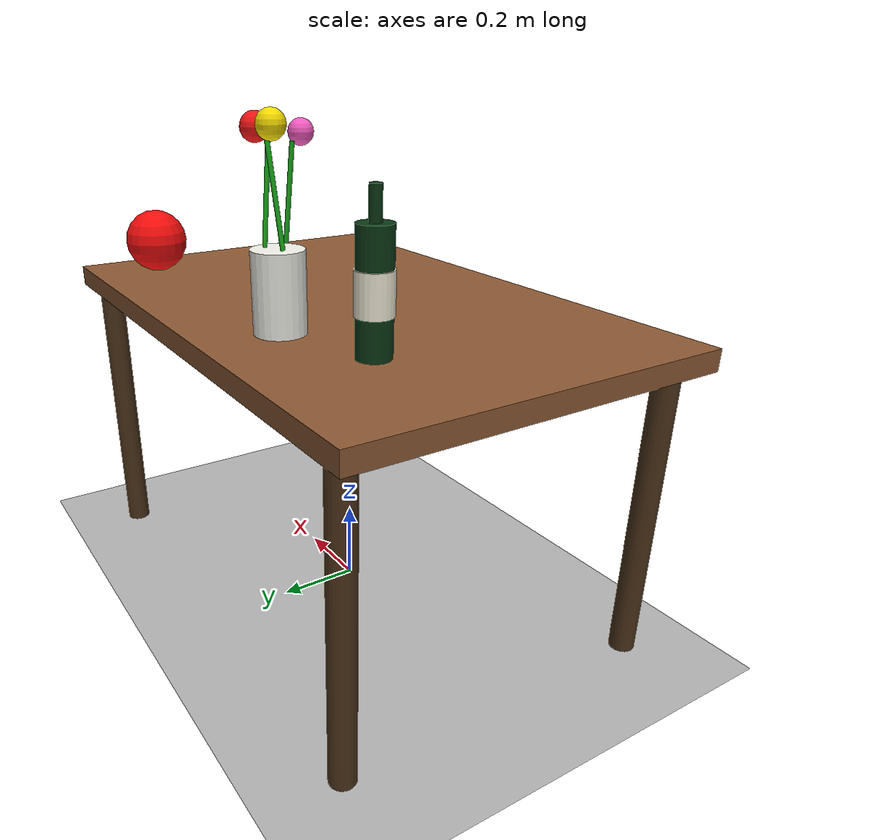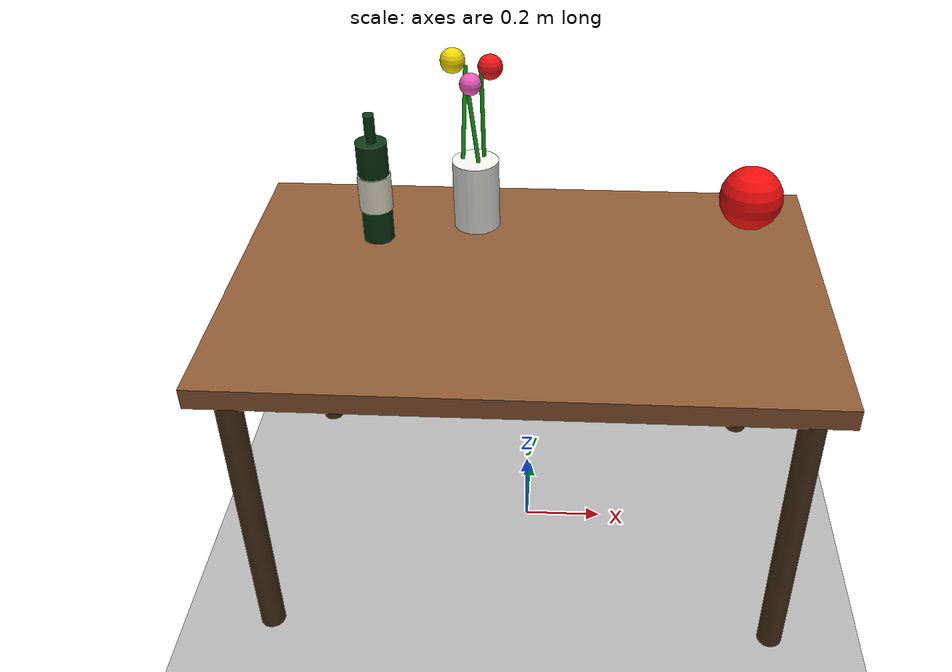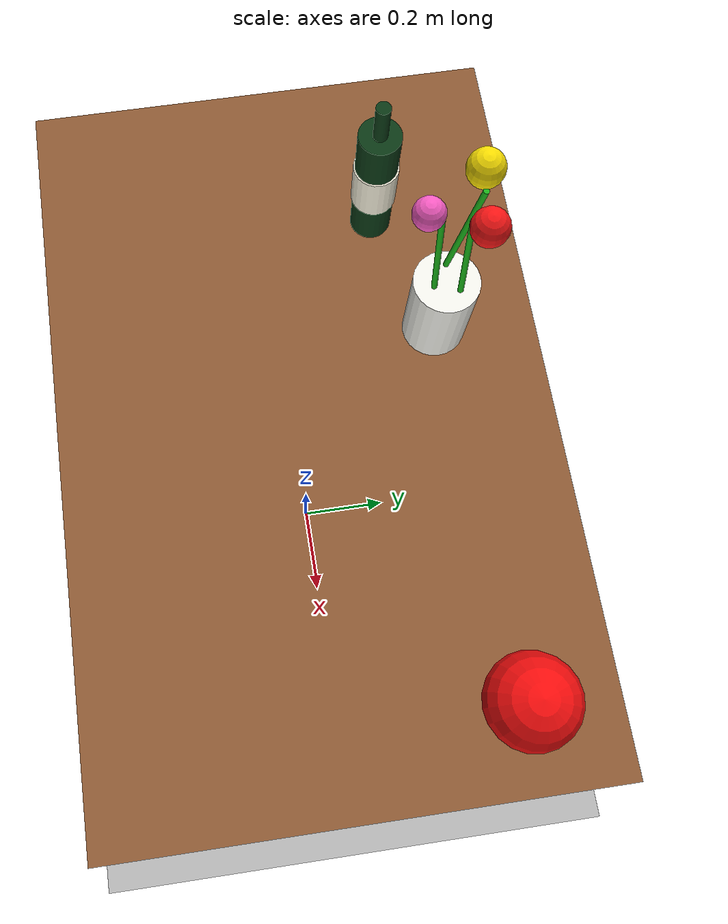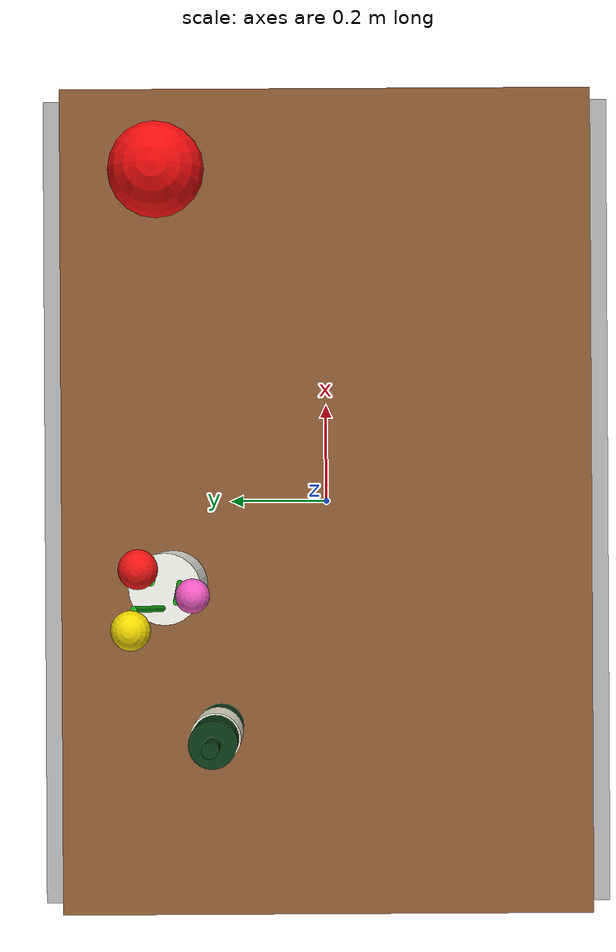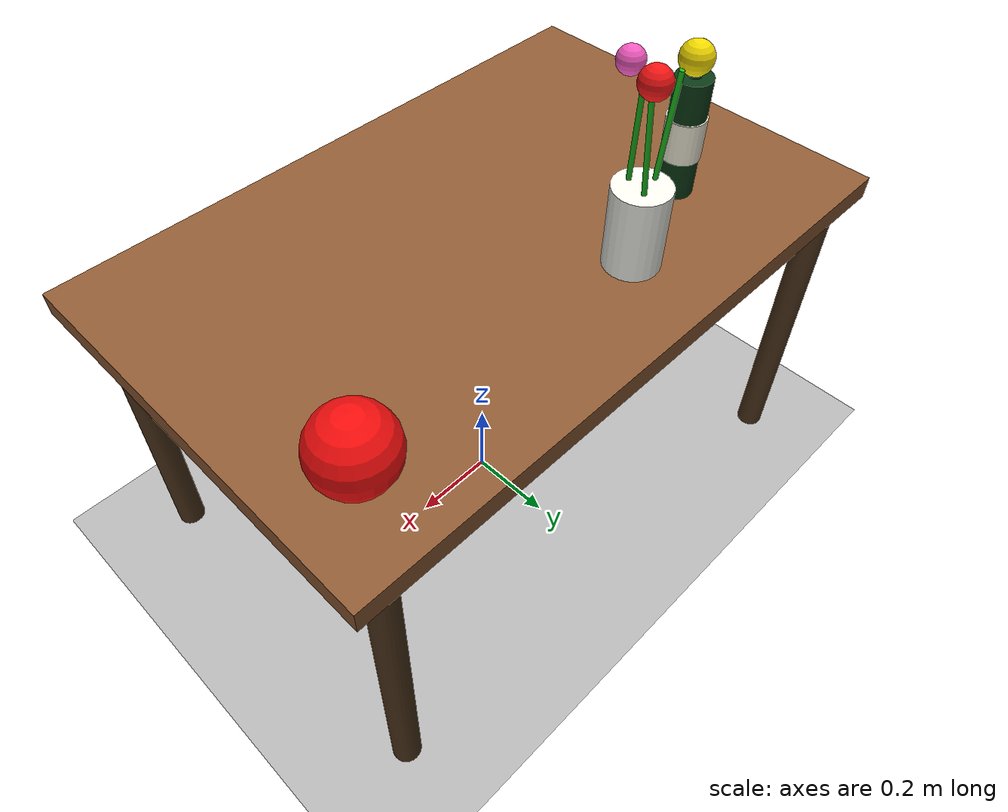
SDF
<sdf version="1.9">
 <world name="table_scene">
  <physics name="1ms" type="ignored">
   <max_step_size>0.001</max_step_size>
   <real_time_factor>1.0</real_time_factor>
  </physics>
  <plugin filename="gz-sim-physics-system" name="gz::sim::systems::Physics"/>
  <plugin filename="gz-sim-user-commands-system" name="gz::sim::systems::UserCommands"/>
  <plugin filename="gz-sim-scene-broadcaster-system" name="gz::sim::systems::SceneBroadcaster"/>
  <plugin filename="gz-sim-sensors-system" name="gz::sim::systems::Sensors">
   <render_engine>ogre2</render_engine>
  </plugin>
  <light type="directional" name="sun">
   <pose>0 0 10 0 0 0</pose>
   <diffuse>1.0 0.98 0.95 1</diffuse>
   <specular>0.4 0.4 0.4 1</specular>
   <direction>-0.3 0.1 -0.9</direction>
  </light>
  <light type="directional" name="fill_camera">
   <cast_shadows>false</cast_shadows>
   <pose>0 -5 2 0 0 0</pose>
   <diffuse>0.8 0.8 0.8 1</diffuse>
   <specular>0.1 0.1 0.1 1</specular>
   <direction>0 0.85 -0.15</direction>
  </light>
  <light type="point" name="table_lamp">
   <cast_shadows>false</cast_shadows>
   <pose>0 0.15 1.5 0 0 0</pose>
   <diffuse>1.0 1.0 1.0 1</diffuse>
   <specular>0.2 0.2 0.2 1</specular>
   <attenuation>
    <range>3</range>
    <constant>0.3</constant>
    <linear>0.1</linear>
    <quadratic>0.0</quadratic>
   </attenuation>
  </light>
  <model name="ground_plane">
   <static>true</static>
   <link name="link">
    <collision name="collision"><geometry><plane><normal>0 0 1</normal></plane></geometry></collision>
    <visual name="visual">
     <geometry><plane><normal>0 0 1</normal><size>10 10</size></plane></geometry>
     <material><ambient>0.7 0.7 0.7 1</ambient><diffuse>0.7 0.7 0.7 1</diffuse></material>
    </visual>
   </link>
  </model>
  <model name="table">
   <static>true</static>
   <link name="table_link">
    <visual name="top">
     <pose>0 0 0.75 0 0 0</pose>
     <geometry><box><size>1.4 0.9 0.05</size></box></geometry>
     <material><ambient>0.55 0.35 0.2 1</ambient><diffuse>0.55 0.35 0.2 1</diffuse></material>
    </visual>
    <collision name="top_col">
     <pose>0 0 0.75 0 0 0</pose>
     <geometry><box><size>1.4 0.9 0.05</size></box></geometry>
    </collision>
    <visual name="leg1">
     <pose>0.62  0.40 0.375 0 0 0</pose>
     <geometry><cylinder><radius>0.03</radius><length>0.75</length></cylinder></geometry>
     <material><ambient>0.3 0.2 0.1 1</ambient><diffuse>0.3 0.2 0.1 1</diffuse></material>
    </visual>
    <collision name="leg1c">
     <pose>0.62  0.40 0.375 0 0 0</pose>
     <geometry><cylinder><radius>0.03</radius><length>0.75</length></cylinder></geometry>
    </collision>
    <visual name="leg2">
     <pose>-0.62  0.40 0.375 0 0 0</pose>
     <geometry><cylinder><radius>0.03</radius><length>0.75</length></cylinder></geometry>
     <material><ambient>0.3 0.2 0.1 1</ambient><diffuse>0.3 0.2 0.1 1</diffuse></material>
    </visual>
    <collision name="leg2c">
     <pose>-0.62  0.40 0.375 0 0 0</pose>
     <geometry><cylinder><radius>0.03</radius><length>0.75</length></cylinder></geometry>
    </collision>
    <visual name="leg3">
     <pose>0.62 -0.40 0.375 0 0 0</pose>
     <geometry><cylinder><radius>0.03</radius><length>0.75</length></cylinder></geometry>
     <material><ambient>0.3 0.2 0.1 1</ambient><diffuse>0.3 0.2 0.1 1</diffuse></material>
    </visual>
    <collision name="leg3c">
     <pose>0.62 -0.40 0.375 0 0 0</pose>
     <geometry><cylinder><radius>0.03</radius><length>0.75</length></cylinder></geometry>
    </collision>
    <visual name="leg4">
     <pose>-0.62 -0.40 0.375 0 0 0</pose>
     <geometry><cylinder><radius>0.03</radius><length>0.75</length></cylinder></geometry>
     <material><ambient>0.3 0.2 0.1 1</ambient><diffuse>0.3 0.2 0.1 1</diffuse></material>
    </visual>
    <collision name="leg4c">
     <pose>-0.62 -0.40 0.375 0 0 0</pose>
     <geometry><cylinder><radius>0.03</radius><length>0.75</length></cylinder></geometry>
    </collision>
   </link>
  </model>
  <model name="wine_bottle">
   <static>true</static>
   <pose>-0.38 0.18 0 0 0 0</pose>
   <link name="link">
    <visual name="body">
     <pose>0 0 0.905 0 0 0</pose>
     <geometry><cylinder><radius>0.038</radius><length>0.26</length></cylinder></geometry>
     <material><ambient>0.04 0.22 0.08 1</ambient><diffuse>0.04 0.22 0.08 1</diffuse></material>
    </visual>
    <collision name="body_c">
     <pose>0 0 0.905 0 0 0</pose>
     <geometry><cylinder><radius>0.038</radius><length>0.26</length></cylinder></geometry>
    </collision>
    <visual name="label">
     <pose>0 0 0.905 0 0 0</pose>
     <geometry><cylinder><radius>0.041</radius><length>0.09</length></cylinder></geometry>
     <material><ambient>0.96 0.94 0.86 1</ambient><diffuse>0.96 0.94 0.86 1</diffuse></material>
    </visual>
    <visual name="neck">
     <pose>0 0 1.065 0 0 0</pose>
     <geometry><cylinder><radius>0.013</radius><length>0.08</length></cylinder></geometry>
     <material><ambient>0.04 0.22 0.08 1</ambient><diffuse>0.04 0.22 0.08 1</diffuse></material>
    </visual>
    <collision name="neck_c">
     <pose>0 0 1.065 0 0 0</pose>
     <geometry><cylinder><radius>0.013</radius><length>0.08</length></cylinder></geometry>
    </collision>
   </link>
  </model>
  <model name="vase_with_flowers">
   <static>true</static>
   <pose>-0.14 0.26 0 0 0 0</pose>
   <link name="link">
    <visual name="vase">
     <pose>0 0 0.864 0 0 0</pose>
     <geometry><cylinder><radius>0.058</radius><length>0.178</length></cylinder></geometry>
     <material><ambient>0.95 0.95 0.92 1</ambient><diffuse>0.95 0.95 0.92 1</diffuse></material>
    </visual>
    <collision name="vase_c">
     <pose>0 0 0.864 0 0 0</pose>
     <geometry><cylinder><radius>0.058</radius><length>0.178</length></cylinder></geometry>
    </collision>
    <visual name="s1">
     <pose>0.02 0.01 1.065 0.08 0 0</pose>
     <geometry><cylinder><radius>0.005</radius><length>0.22</length></cylinder></geometry>
     <material><ambient>0.1 0.7 0.1 1</ambient><diffuse>0.1 0.7 0.1 1</diffuse></material>
    </visual>
    <visual name="s2">
     <pose>-0.025 0.015 1.07 -0.1 0.05 0</pose>
     <geometry><cylinder><radius>0.005</radius><length>0.23</length></cylinder></geometry>
     <material><ambient>0.1 0.7 0.1 1</ambient><diffuse>0.1 0.7 0.1 1</diffuse></material>
    </visual>
    <visual name="s3">
     <pose>0.0 -0.03 1.06 0.05 -0.1 0</pose>
     <geometry><cylinder><radius>0.005</radius><length>0.20</length></cylinder></geometry>
     <material><ambient>0.1 0.7 0.1 1</ambient><diffuse>0.1 0.7 0.1 1</diffuse></material>
    </visual>
    <visual name="h1">
     <pose>0.04 0.02 1.185 0 0 0</pose>
     <geometry><sphere><radius>0.030</radius></sphere></geometry>
     <material><ambient>0.95 0.08 0.08 1</ambient><diffuse>0.95 0.08 0.08 1</diffuse></material>
    </visual>
    <visual name="h2">
     <pose>-0.05 0.03 1.195 0 0 0</pose>
     <geometry><sphere><radius>0.030</radius></sphere></geometry>
     <material><ambient>0.95 0.85 0.0 1</ambient><diffuse>0.95 0.85 0.0 1</diffuse></material>
    </visual>
    <visual name="h3">
     <pose>0.0 -0.06 1.175 0 0 0</pose>
     <geometry><sphere><radius>0.026</radius></sphere></geometry>
     <material><ambient>0.95 0.35 0.75 1</ambient><diffuse>0.95 0.35 0.75 1</diffuse></material>
    </visual>
   </link>
  </model>
  <model name="red_ball">
   <static>true</static>
   <pose>0.55 0.28 0 0 0 0</pose>
   <link name="link">
    <visual name="v">
     <pose>0 0 0.855 0 0 0</pose>
     <geometry><sphere><radius>0.08</radius></sphere></geometry>
     <material><ambient>0.95 0.05 0.05 1</ambient><diffuse>0.95 0.05 0.05 1</diffuse></material>
    </visual>
    <collision name="c">
     <pose>0 0 0.855 0 0 0</pose>
     <geometry><sphere><radius>0.08</radius></sphere></geometry>
    </collision>
   </link>
  </model>
  <model name="overhead_rgbd_camera">
   <static>true</static>
   <pose>0 -1.4 1.6 0 0.5 1.5708</pose>
   <link name="camera_link">
    <sensor name="rgbd_camera_sensor" type="rgbd_camera">
     <always_on>1</always_on>
     <update_rate>10</update_rate>
     <visualize>true</visualize>
     <topic>rgbd_camera</topic>
     <camera>
      <horizontal_fov>1.25</horizontal_fov>
      <image><width>640</width><height>480</height><format>R8G8B8</format></image>
      <clip><near>0.05</near><far>10.0</far></clip>
     </camera>
    </sensor>
   </link>
  </model>
 </world>
</sdf>
